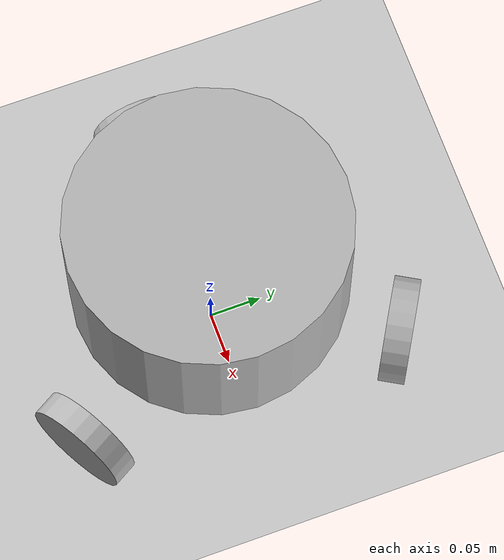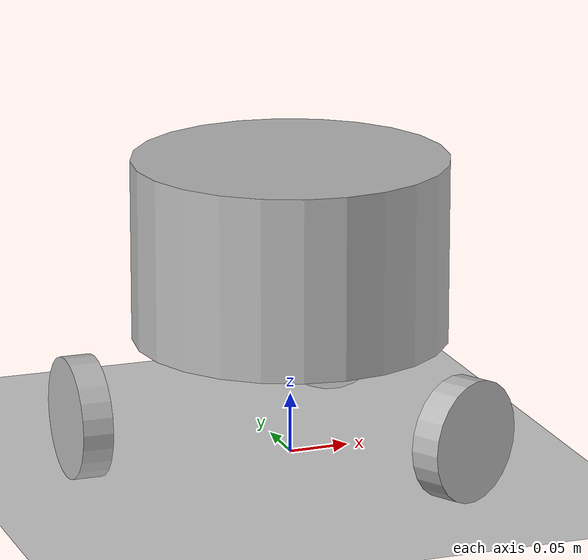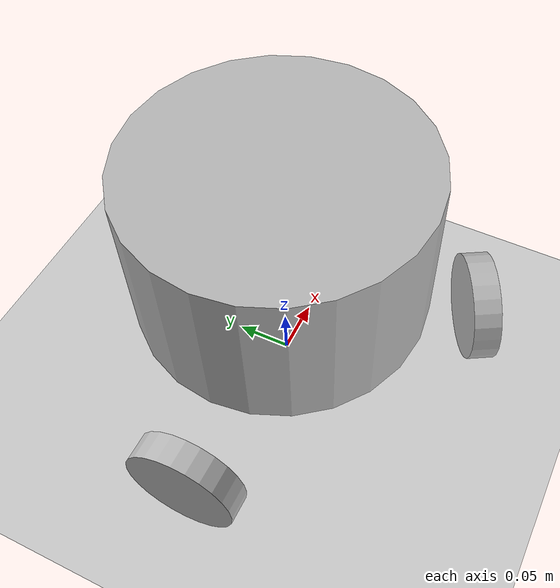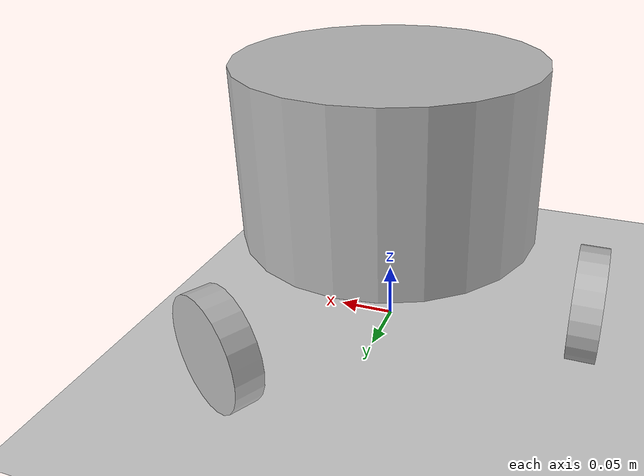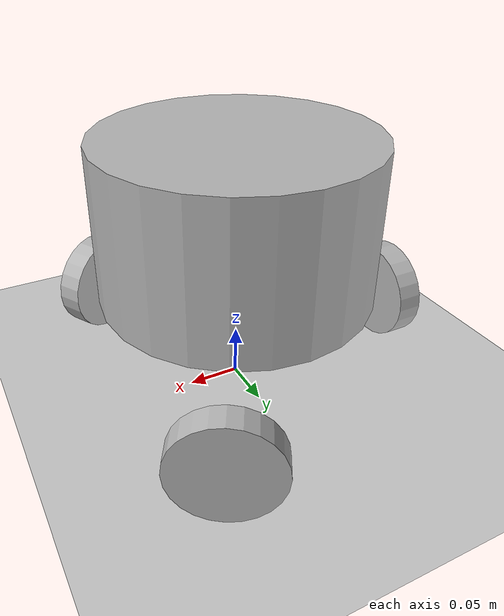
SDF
<?xml version="1.0"?>
<sdf version="1.6">
  <world name="default">

    <include>
      <uri>model://ground_plane</uri>
    </include>

    <include>
      <uri>model://sun</uri>
    </include>

    <model name='vehicle'>
      <pose>0 0 0 0 -0 0</pose>

      <link name='chassis'>
        <pose>0 -0 0.175 0 -0 0</pose>
        <inertial>
          <mass>1.14395</mass>
          <inertia>
            <ixx>0.126164</ixx>
            <ixy>0</ixy>
            <ixz>0</ixz>
            <iyy>0.416519</iyy>
            <iyz>0</iyz>
            <izz>0.481014</izz>
          </inertia>
        </inertial>
        <visual name='visual'>
          <geometry>
            <cylinder>
              <length>0.15</length>
              <radius>0.13</radius>
            </cylinder>
          </geometry>
        </visual>
        <collision name='collision'>
          <geometry>
            <cylinder>
              <length>0.15</length>
              <radius>0.13</radius>
            </cylinder>
          </geometry>
        </collision>
      </link>

      <link name='left_wheel'>
        <pose frame=''>0.09 0.155885 0.05 0 -0 1.0472</pose>
        <inertial>
          <pose frame=''>0 0 0 0 -0 0</pose>
          <mass>0.4</mass>
          <inertia>
            <ixx>0.0124118</ixx>
            <ixy>-0.000711734</ixy>
            <ixz>0.00050273</ixz>
            <iyy>0.0152182</iyy>
            <iyz>-4.27347e-06</iyz>
            <izz>0.011764</izz>
          </inertia>
        </inertial>
        <collision name='wheel_link_left_collision'>
          <pose frame=''>0 0 0 3.14159 1.57079 3.14159</pose>
          <geometry>
            <cylinder>
              <length>0.025</length>
              <radius>0.05</radius>
            </cylinder>
          </geometry>
          <surface>
            <contact>
              <ode>
                <kp>1e+07</kp>
                <kd>1</kd>
              </ode>
            </contact>
            <friction>
              <ode>
                <mu>1</mu>
                <mu2>0</mu2>
                <fdir1>0 1 0</fdir1>
              </ode>
            </friction>
          </surface>
        </collision>
        <visual name='wheel_link_left_visual'>
          <pose frame=''>0 0 0 3.14159 1.57079 3.14159</pose>
          <geometry>
            <cylinder>
              <length>0.025</length>
              <radius>0.05</radius>
            </cylinder>
          </geometry>
          <material>
            <script>
              <uri>__default__</uri>
              <name>__default__</name>
            </script>
          </material>
        </visual>
        <gravity>1</gravity>
        <velocity_decay/>
      </link>

      <link name='back_wheel'>
        <pose frame=''>-0.18 0 0.05 0 -0 3.14159</pose>
        <inertial>
          <pose frame=''>0 0 0 0 -0 0</pose>
          <mass>0.4</mass>
          <inertia>
            <ixx>0.0124118</ixx>
            <ixy>-0.000711734</ixy>
            <ixz>0.00050273</ixz>
            <iyy>0.0152182</iyy>
            <iyz>-4.27347e-06</iyz>
            <izz>0.011764</izz>
          </inertia>
        </inertial>
        <collision name='wheel_link_back_collision'>
          <pose frame=''>0 0 0 3.14159 1.57079 3.14159</pose>
          <geometry>
            <cylinder>
              <length>0.025</length>
              <radius>0.05</radius>
            </cylinder>
          </geometry>
          <surface>
            <contact>
              <ode>
                <kp>1e+07</kp>
                <kd>1</kd>
              </ode>
            </contact>
            <friction>
              <ode>
                <mu>1</mu>
                <mu2>0</mu2>
                <fdir1>0 1 0</fdir1>
              </ode>
            </friction>
          </surface>
        </collision>
        <visual name='wheel_link_back_visual'>
          <pose frame=''>0 0 0 3.14159 1.57079 3.14159</pose>
          <geometry>
            <cylinder>
              <length>0.025</length>
              <radius>0.05</radius>
            </cylinder>
          </geometry>
          <material>
            <script>
              <uri>__default__</uri>
              <name>__default__</name>
            </script>
          </material>
        </visual>
        <gravity>1</gravity>
        <velocity_decay/>
      </link>

      <link name='right_wheel'>
        <pose frame=''>0.09 -0.155885 0.05 0 -0 -1.0472</pose>
        <inertial>
          <pose frame=''>0 0 0 0 -0 0</pose>
          <mass>0.4</mass>
          <inertia>
            <ixx>0.0124118</ixx>
            <ixy>-0.000711734</ixy>
            <ixz>0.00050273</ixz>
            <iyy>0.0152182</iyy>
            <iyz>-4.27347e-06</iyz>
            <izz>0.011764</izz>
          </inertia>
        </inertial>
        <collision name='wheel_link_right_collision'>
          <pose frame=''>0 0 0 3.14159 1.57079 3.14159</pose>
          <geometry>
            <cylinder>
              <length>0.025</length>
              <radius>0.05</radius>
            </cylinder>
          </geometry>
          <surface>
            <contact>
              <ode>
                <kp>1e+07</kp>
                <kd>1</kd>
              </ode>
            </contact>
            <friction>
              <ode>
                <mu>1</mu>
                <mu2>0</mu2>
                <fdir1>0 1 0</fdir1>
              </ode>
            </friction>
          </surface>
        </collision>
        <visual name='wheel_link_right_visual'>
          <pose frame=''>0 0 0 3.14159 1.57079 3.14159</pose>
          <geometry>
            <cylinder>
              <length>0.025</length>
              <radius>0.05</radius>
            </cylinder>
          </geometry>
          <material>
            <script>
              <uri>__default__</uri>
              <name>__default__</name>
            </script>
          </material>
        </visual>
        <gravity>1</gravity>
        <velocity_decay/>
      </link>

      <joint name='left_wheel_joint' type='revolute'>
        <parent>chassis</parent>
        <child>left_wheel</child>
        <axis>
          <xyz>0.5 0.866025 0</xyz>
          <limit>
            <lower>-1e+16</lower>
            <upper>1e+16</upper>
          </limit>
          <dynamics>
            <spring_reference>0</spring_reference>
            <spring_stiffness>0</spring_stiffness>
          </dynamics>
          <use_parent_model_frame>1</use_parent_model_frame>
        </axis>
      </joint>

      <joint name='right_wheel_joint' type='revolute'>
        <parent>chassis</parent>
        <child>right_wheel</child>
        <axis>
          <xyz>0.5 -0.866025 0</xyz>
          <limit>
            <lower>-1e+16</lower>
            <upper>1e+16</upper>
          </limit>
          <dynamics>
            <spring_reference>0</spring_reference>
            <spring_stiffness>0</spring_stiffness>
          </dynamics>
          <use_parent_model_frame>1</use_parent_model_frame>
        </axis>
      </joint>

      <joint name='back_wheel_joint' type='revolute'>
        <parent>chassis</parent>
        <child>back_wheel</child>
        <axis>
          <xyz>-1 0 0</xyz>
          <limit>
            <lower>-1e+16</lower>
            <upper>1e+16</upper>
          </limit>
          <dynamics>
            <spring_reference>0</spring_reference>
            <spring_stiffness>0</spring_stiffness>
          </dynamics>
          <use_parent_model_frame>1</use_parent_model_frame>
        </axis>
      </joint>

      <plugin name='omni_3wd_drive' filename='libgazebo_ros_omni_3wd_drive.so'>

        <ros>
          <namespace>/</namespace>
          <remapping>cmd_vel:=cmd_demo</remapping>
          <remapping>odom:=odom_demo</remapping>
        </ros>

        <!-- wheels -->
        <left_joint>left_wheel_joint</left_joint>
        <right_joint>right_wheel_joint</right_joint>
        <back_joint>back_wheel_joint</back_joint>

        <!-- kinematics -->
        <wheel_separation>0.18</wheel_separation>
        <wheel_diameter>0.1</wheel_diameter>

        <!-- limits -->
        <max_wheel_torque>20</max_wheel_torque>
        <max_wheel_acceleration>1.0</max_wheel_acceleration>

        <!-- output -->
        <publish_odom>true</publish_odom>
        <publish_odom_tf>true</publish_odom_tf>
        <publish_wheel_tf>true</publish_wheel_tf>

        <odometry_frame>odom_demo</odometry_frame>
        <robot_base_frame>chassis</robot_base_frame>

      </plugin>

    </model>

  </world>
</sdf>
